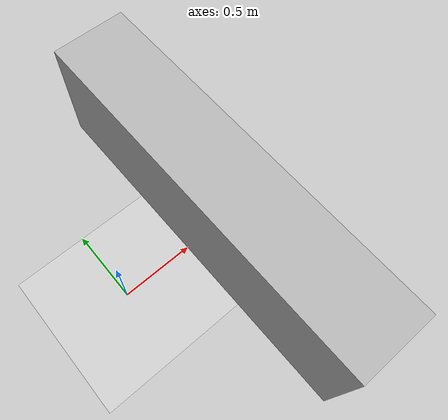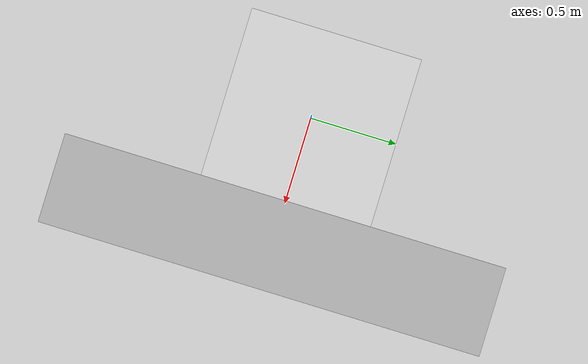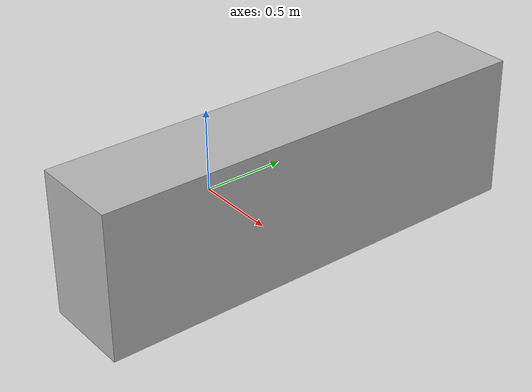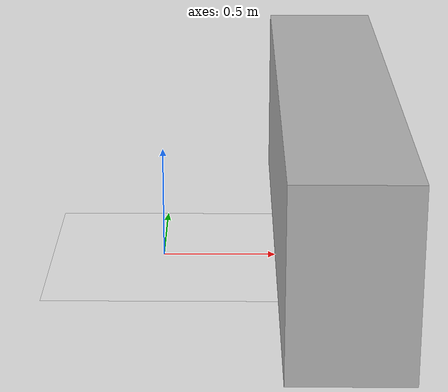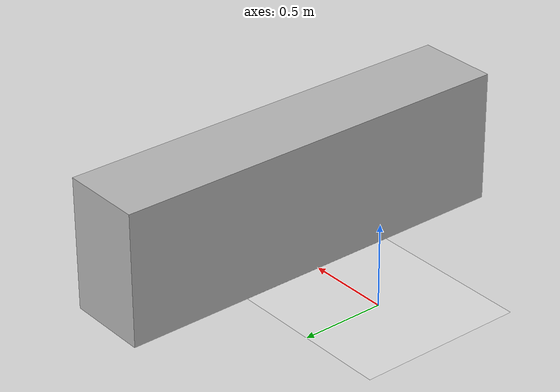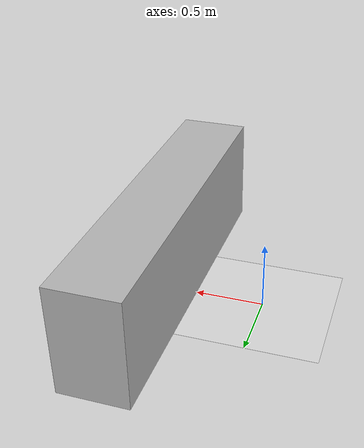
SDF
<?xml version="1.0" ?>
<sdf version="1.6">
  <world name="scene">
    <model name="floor">
      <static>1</static>
      <link name="floor_world_link"/>
      <link name="floor_link">
        <pose>0 0 0 0 0 0</pose>
        <gravity>0</gravity>
        <visual name="floor_visual">
          <geometry>
            <plane>
              <normal>0 0 1</normal>
              <size>1 1</size>
            </plane>
          </geometry>
          <material>
            <ambient>1 1 1 0.1</ambient>
          </material>
        </visual>
        <collision name="floor_col">
          <geometry>
            <plane>
              <normal>0 0 1</normal>
              <size>100 100</size>
            </plane>
          </geometry>
        </collision>
      </link>
      <joint name="floor_base" type="fixed">
        <parent>floor_world_link</parent>
        <child>floor_link</child>
      </joint>
    </model>
    <model name="box">
      <static>1</static>
      <link name="box_world_link"/>
      <link name="box_link">
	<pose>0.75 0.0 0.4 0 0 0</pose>
	<gravity>0</gravity>
	<visual name="box_visual">
	  <geometry>
	    <box>
	      <size>0.5 2.5 0.8</size>
	    </box>
	  </geometry>
	</visual>
	<collision name="box_col">
	  <geometry>
	    <box>
	      <size>0.5 2.5 0.8</size>
	    </box>
	  </geometry>
	</collision>
      </link>
      <joint name="box_base" type="fixed">
	<parent>box_world_link</parent>
	<child>box_link</child>
      </joint>
    </model>
  </world>
</sdf>
